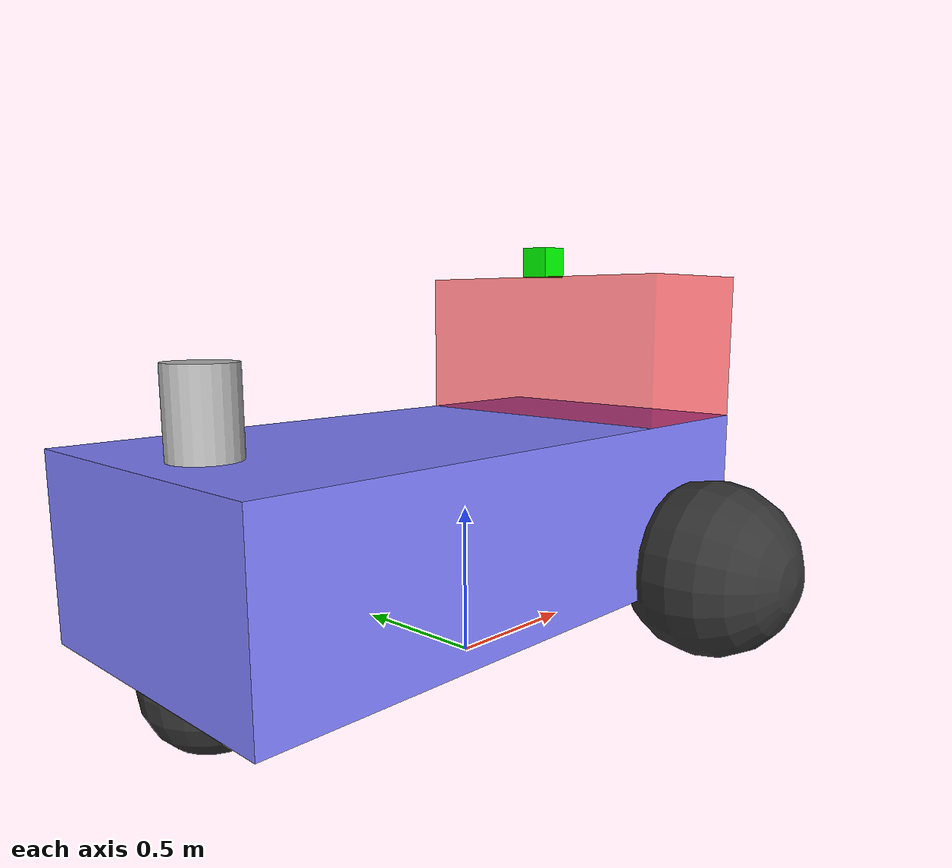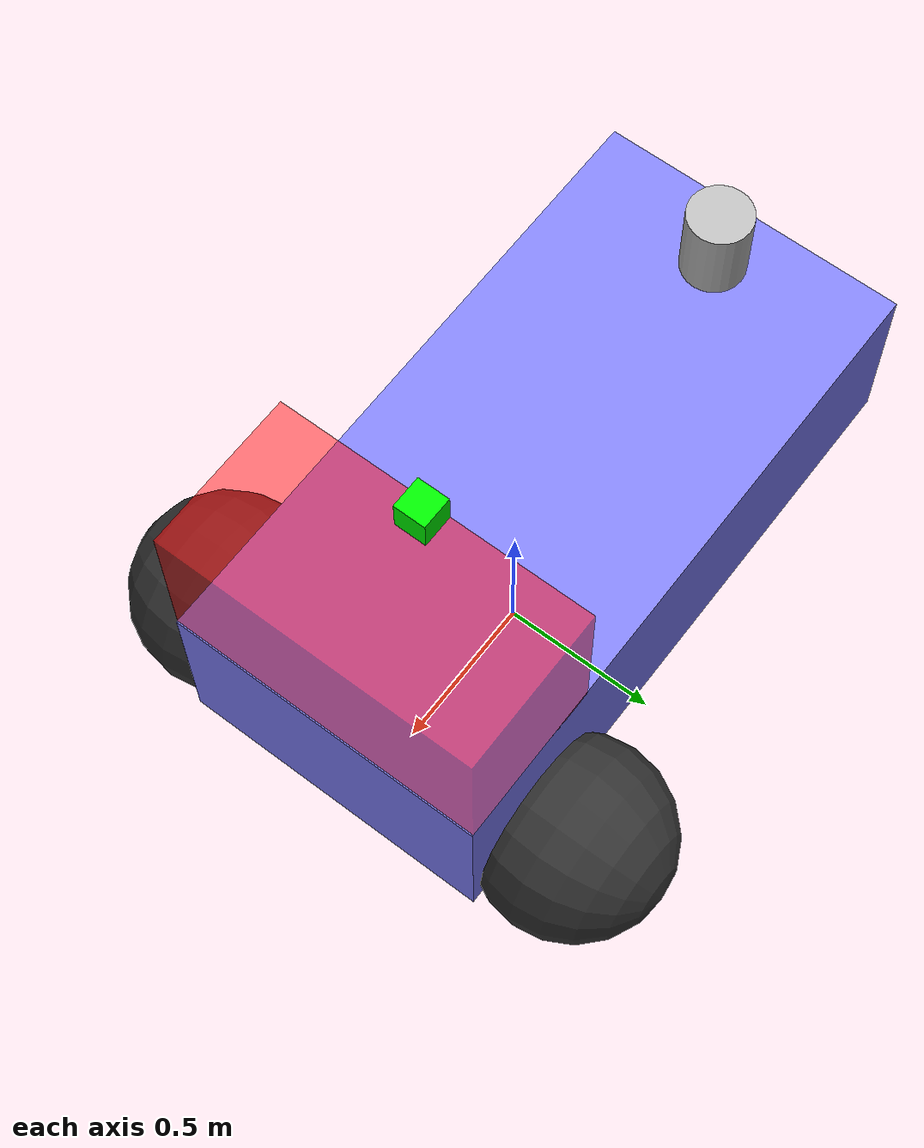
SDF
<?xml version='1.0' ?>
<sdf version='1.9' xmlns:custom="http://example.org/schema">
  <model name='vehicle' canonical_link='top'>
    <pose>0 0 0.325 0 -0 0</pose>

    <link name='chassis'>
      <pose>-0.151427 -0 0.175 0 -0 0</pose>
      <inertial>
        <mass>1.14395</mass>
        <inertia>
          <ixx>0.126164</ixx>
          <ixy>0</ixy>
          <ixz>0</ixz>
          <iyy>0.416519</iyy>
          <iyz>0</iyz>
          <izz>0.481014</izz>
        </inertia>
      </inertial>
      <visual name='visual'>
        <geometry>
          <box>
            <size>2.01142 1 0.568726</size>
          </box>
        </geometry>
        <material>
          <ambient>0.5 0.5 1.0 1</ambient>
          <diffuse>0.5 0.5 1.0 1</diffuse>
          <specular>0.0 0.0 1.0 1</specular>
        </material>
      </visual>
      <collision name='collision'>
        <geometry>
          <box>
            <size>2.01142 1 0.568726</size>
          </box>
        </geometry>
      </collision>

      <visual name="lidar_visual">
        <pose>-0.8 0 0.41 0 0 0</pose>
          <geometry>
              <cylinder>
                  <radius>0.1</radius>
                  <length>0.25</length>
              </cylinder>
          </geometry>
      </visual>

      <sensor name='lidar' type='gpu_lidar'>
        <pose>-0.8 0 0.41 0 0 0</pose>
        <topic>lidar</topic>
        <update_rate>10</update_rate>
        <lidar>
          <scan>
            <horizontal>
              <samples>640</samples>
              <resolution>1</resolution>
              <min_angle>-1.396263</min_angle>
              <max_angle>1.396263</max_angle>
            </horizontal>
            <vertical>
              <samples>16</samples>
              <resolution>1</resolution>
              <min_angle>-0.261799</min_angle>
              <max_angle>0.261799</max_angle>
            </vertical>
          </scan>
          <range>
            <min>0.08</min>
            <max>10.0</max>
            <resolution>0.01</resolution>
          </range>
        </lidar>
        <alwaysOn>1</alwaysOn>
        <visualize>true</visualize>
      </sensor>

    </link>

    <link name="top">
      <pose>0.6 0 0.7 0 0 0</pose>
      <collision name="top_collision">
        <geometry>
          <box>
            <size>0.5 1 0.5</size>
          </box>
        </geometry>
      </collision>
      <visual name="top_visual">
        <geometry>
          <box>
            <size>0.5 1 0.5</size>
          </box>
        </geometry>
        <material>
          <ambient>1 0 0 1</ambient>
          <diffuse>1 0 0 1</diffuse>
          <specular>1 0 0 1</specular>
        </material>
        <transparency>0.5</transparency>
        <cast_shadows>1</cast_shadows>
        <plugin name="top_plugin" filename="/path/to/plugin"/>
        <plugin name="top_plugin2" filename="/path/to/plugin"/>
        <plugin name="top_plugin3" filename="/path/to/plugin"/>
      </visual>

      <collision name="camera_collision">
        <pose>-0.2 0 0.3 0 0 3.14</pose>
        <geometry>
          <box>
            <size>0.1 0.1 0.1</size>
          </box>
        </geometry>
      </collision>

      <visual name="camera_visual">
        <pose>-0.2 0 0.3 0 0 3.14</pose>
        <geometry>
          <box>
            <size>0.1 0.1 0.1</size>
          </box>
        </geometry>
        <material>
          <ambient>0 1 0 1</ambient>
          <diffuse>0 1 0 1</diffuse>
          <specular>0.5 0.5 0.5 1</specular>
          <lighting>1</lighting>
        </material>
        <plugin name='some_visual_plugin' filename='/path/to/plugin'/>
      </visual>

      <sensor name="camera" type="camera">
        <pose>-0.2 0 0.3 0 0.0 0</pose>
        <camera>
          <horizontal_fov>2</horizontal_fov>
          <image>
            <width>320</width>
            <height>240</height>
          </image>
          <clip>
            <near>0.1</near>
            <far>100</far>
          </clip>
        </camera>
        <always_on>1</always_on>
        <update_rate>30</update_rate>
        <visualize>true</visualize>
        <topic>top/camera</topic>
      </sensor>

    </link>

    <joint name="top_to_base" type="fixed">
      <pose>1 2 3 0 0 0</pose>
      <parent>chassis</parent>
      <child>top</child>
    </joint>

    <link name='left_wheel'>
      <pose>0.554283 0.625029 -0.025 -1.5707 0 0</pose>
      <inertial>
        <mass>2</mass>
        <inertia>
          <ixx>0.145833</ixx>
          <ixy>0</ixy>
          <ixz>0</ixz>
          <iyy>0.145833</iyy>
          <iyz>0</iyz>
          <izz>0.125</izz>
        </inertia>
      </inertial>
      <visual name='visual'>
        <geometry>
          <sphere>
            <radius>0.3</radius>
          </sphere>
        </geometry>
        <material>
          <ambient>0.2 0.2 0.2 1</ambient>
          <diffuse>0.2 0.2 0.2 1</diffuse>
          <specular>0.2 0.2 0.2 1</specular>
        </material>
      </visual>
      <collision name='collision'>
        <geometry>
          <sphere>
            <radius>0.3</radius>
          </sphere>
        </geometry>
      </collision>
    </link>

    <link name='right_wheel'>
      <pose>0.554282 -0.625029 -0.025 -1.5707 0 0</pose>
      <inertial>
        <mass>2</mass>
        <inertia>
          <ixx>0.145833</ixx>
          <ixy>0</ixy>
          <ixz>0</ixz>
          <iyy>0.145833</iyy>
          <iyz>0</iyz>
          <izz>0.125</izz>
        </inertia>
      </inertial>
      <visual name='visual'>
        <geometry>
          <sphere>
            <radius>0.3</radius>
          </sphere>
        </geometry>
        <material>
          <ambient>0.2 0.2 0.2 1</ambient>
          <diffuse>0.2 0.2 0.2 1</diffuse>
          <specular>0.2 0.2 0.2 1</specular>
        </material>
      </visual>
      <collision name='collision'>
        <geometry>
          <sphere>
            <radius>0.3</radius>
          </sphere>
        </geometry>
      </collision>
    </link>

    <link name='caster'>
      <pose>-0.957138 -0 -0.125 0 -0 0</pose>
      <inertial>
        <mass>1</mass>
        <inertia>
          <ixx>0.1</ixx>
          <ixy>0</ixy>
          <ixz>0</ixz>
          <iyy>0.1</iyy>
          <iyz>0</iyz>
          <izz>0.1</izz>
        </inertia>
      </inertial>
      <visual name='visual'>
        <geometry>
          <sphere>
            <radius>0.2</radius>
          </sphere>
        </geometry>
        <material>
          <ambient>0.2 0.2 0.2 1</ambient>
          <diffuse>0.2 0.2 0.2 1</diffuse>
          <specular>0.2 0.2 0.2 1</specular>
        </material>
      </visual>
      <collision name='collision'>
        <geometry>
          <sphere>
            <radius>0.2</radius>
          </sphere>
        </geometry>
      </collision>
    </link>

    <joint name='left_wheel_joint' type='revolute'>
      <parent>chassis</parent>
      <child>left_wheel</child>
      <axis>
        <xyz expressed_in="__model__">0 0 1</xyz>
        <limit>
          <lower>-1.79769e+308</lower>
          <upper>1.79769e+308</upper>
        </limit>
      </axis>
    </joint>

    <joint name='right_wheel_joint' type='revolute'>
      <pose relative_to='__model__'>1 0 0 0 0 0</pose>
      <parent>chassis</parent>
      <child>right_wheel</child>
      <axis>
        <xyz>0 0 1</xyz>
        <limit>
          <lower>-1.79769e+308</lower>
          <upper>1.79769e+308</upper>
        </limit>
      </axis>
    </joint>

    <joint name='caster_wheel' type='ball'>
      <parent>chassis</parent>
      <child>caster</child>
    </joint>

    <link name="test_child_link"/>
    <link name="test_parent_link"/>

    <joint name="test_model_parent" type="fixed">
      <parent>__model__</parent>
      <child>test_child_link</child>
    </joint>

    <joint name="test_model_child" type="fixed">
      <parent>test_parent_link</parent>
      <child>__model__</child>
    </joint>

    <frame name="sensor_frame" attached_to="top">
      <pose relative_to="__model__" degrees="true">0 1 0  0 45 0</pose>
    </frame>
    <model name='nested_models'>
      <pose>0 0 0 0 0 0</pose>
      <model name='model1'>
        <link name='link1'/>
      </model>
    </model>
    <plugin name='test' filename='test_file'>
      <config1>val</config1>
      <config2>val2</config2>
    </plugin>
    <custom:foo name='baz' />
    <enable_wind>true</enable_wind> <!-- Should be ignored -->
    <static>false</static> <!-- Should be ignored -->
    <unknown_element name='test_value' /> <!-- Should be ignored -->
  </model>
</sdf>
